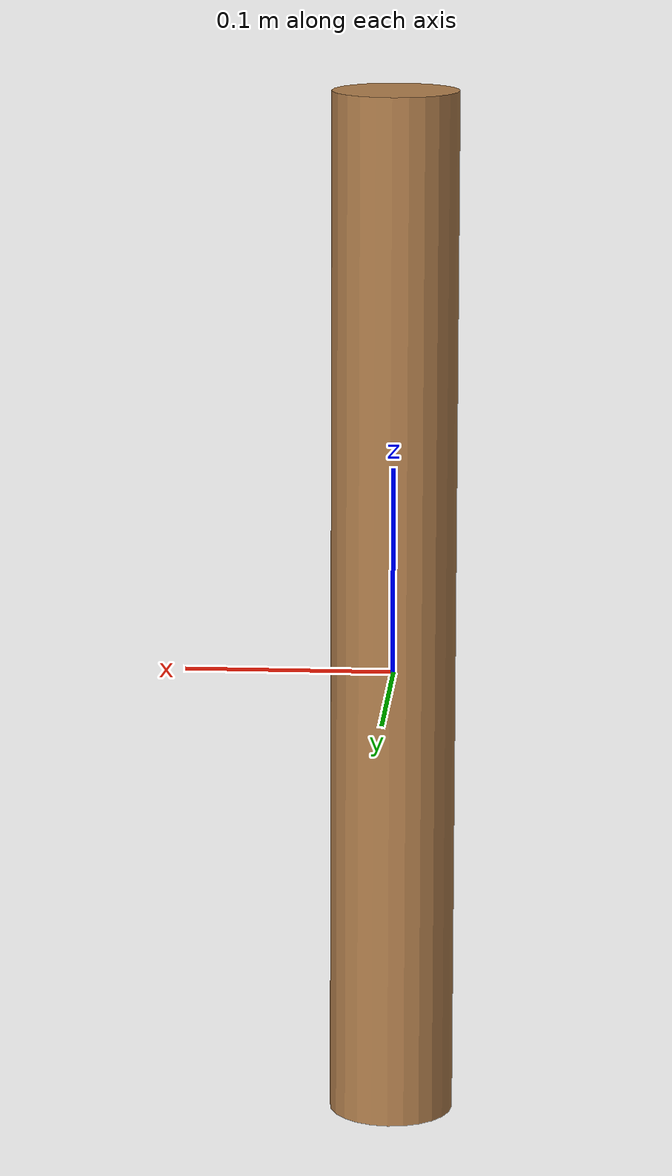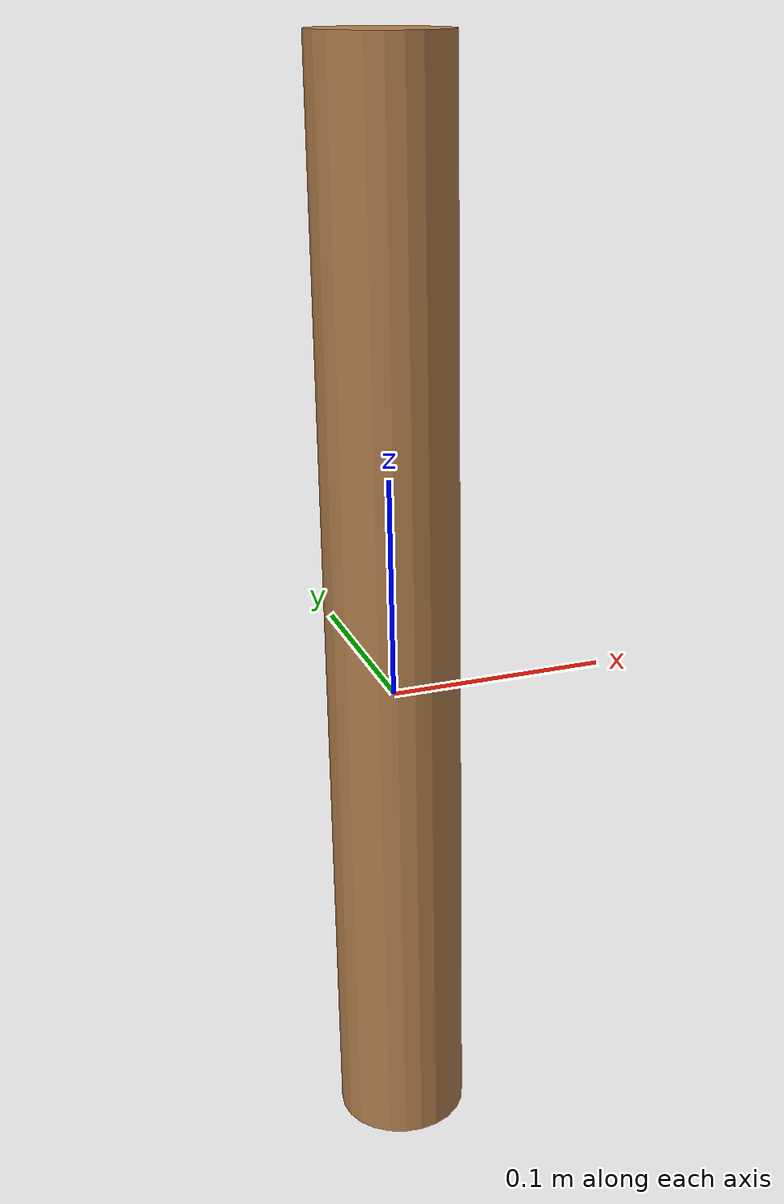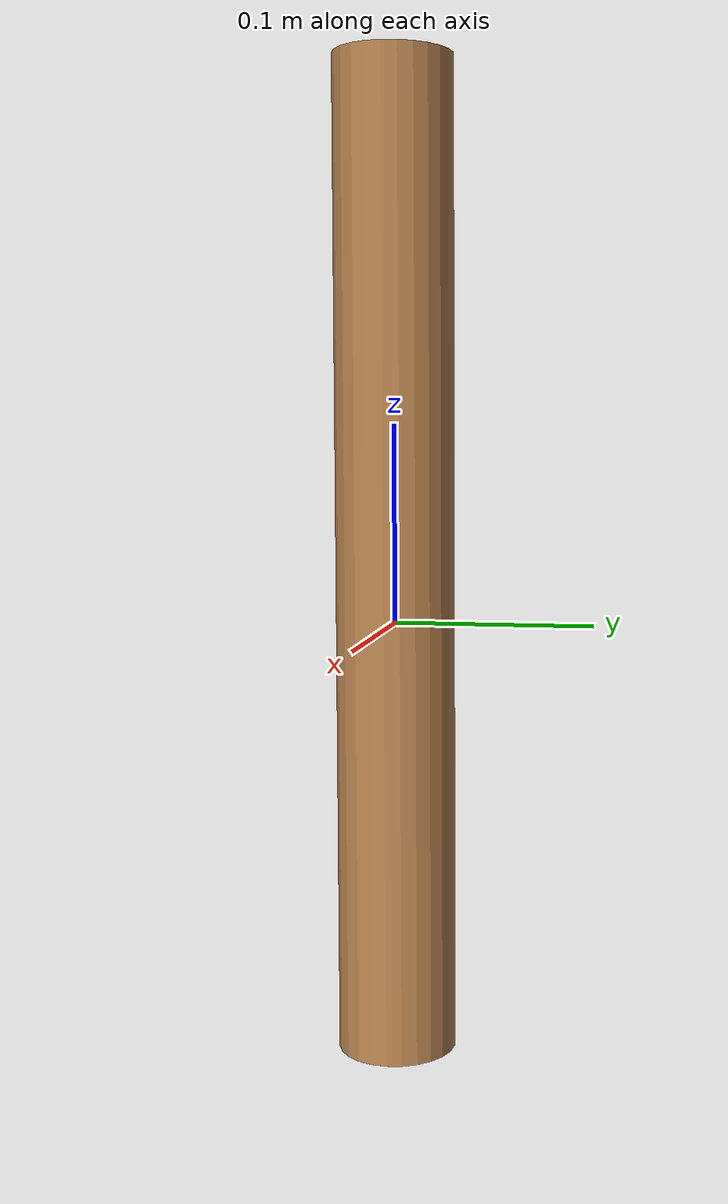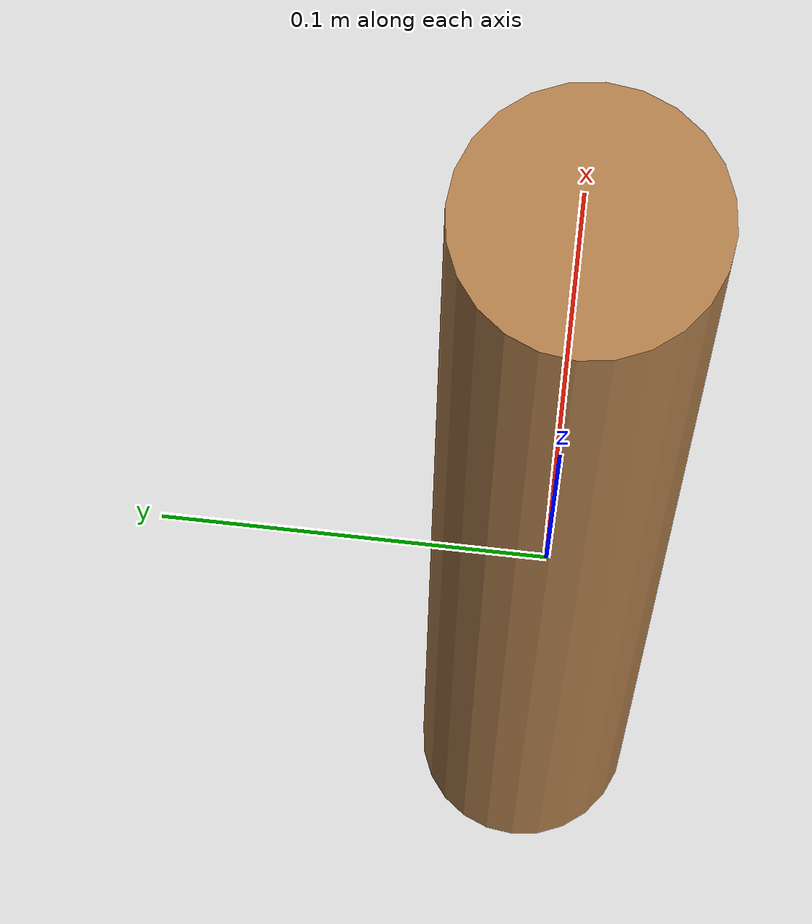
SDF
<?xml version='1.0'?>
<sdf version='1.4'>
  <model name="baseBranch">
  <static>true</static>
    <link name="cylinder">
      <pose>0 0 0.03 0 0 0</pose>

      <collision name="collision">
        <geometry>
          <cylinder>
              <radius>.03</radius> <length>0.5</length>
          </cylinder>
        </geometry>
      </collision>

      <visual name="visual">
        <geometry>
          <cylinder>
              <radius>.03</radius> <length>0.5</length>
          </cylinder>
        </geometry>
        <material>
	  <script>
	    <name>Gazebo/WoodFloor</name>
	  </script>
        </material>
      </visual>

    <inertial>
      <pose>0 0 0 0 0 0</pose>
      <mass>10</mass>
      <inertia>
        <ixx>0.4</ixx>
        <ixy>0.0</ixy>
        <ixz>0.0</ixz>
        <iyy>0.4</iyy>
        <iyz>0.0</iyz>
        <izz>0.2</izz>
      </inertia>
    </inertial>

    </link>

  </model>
</sdf>
